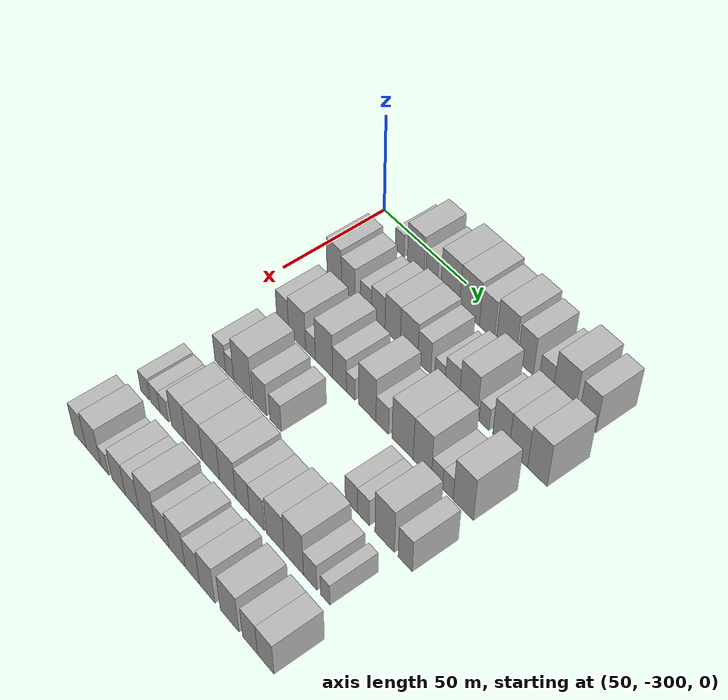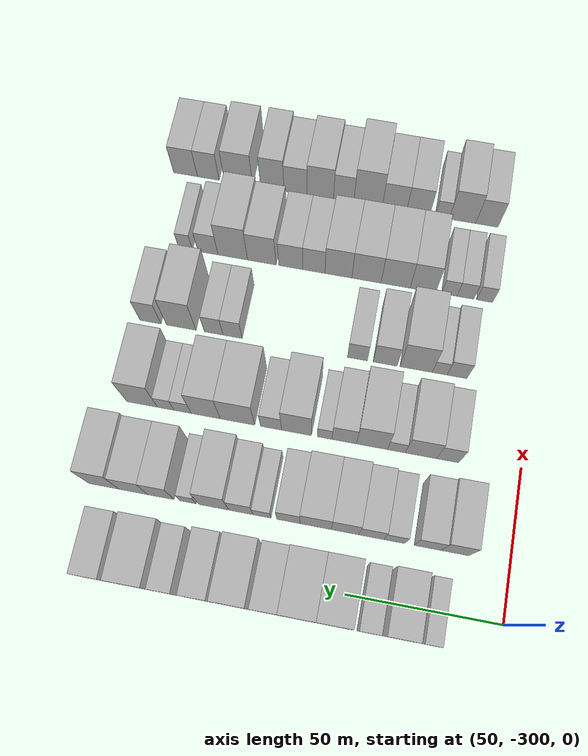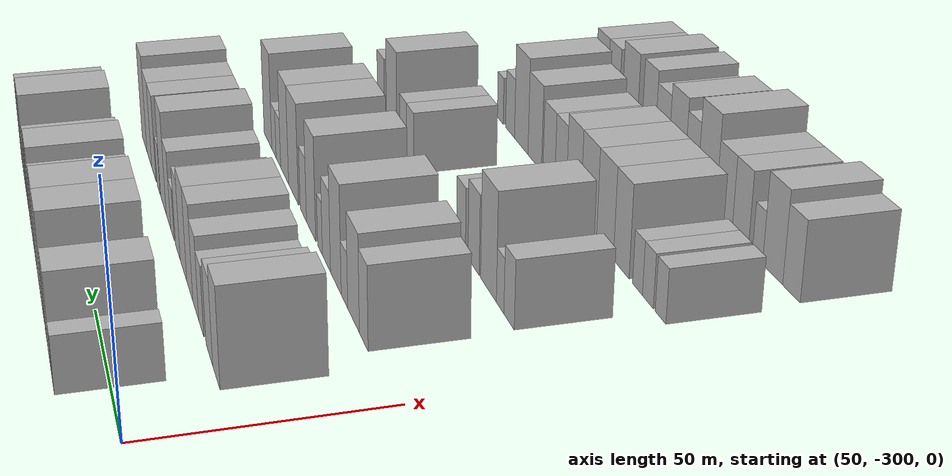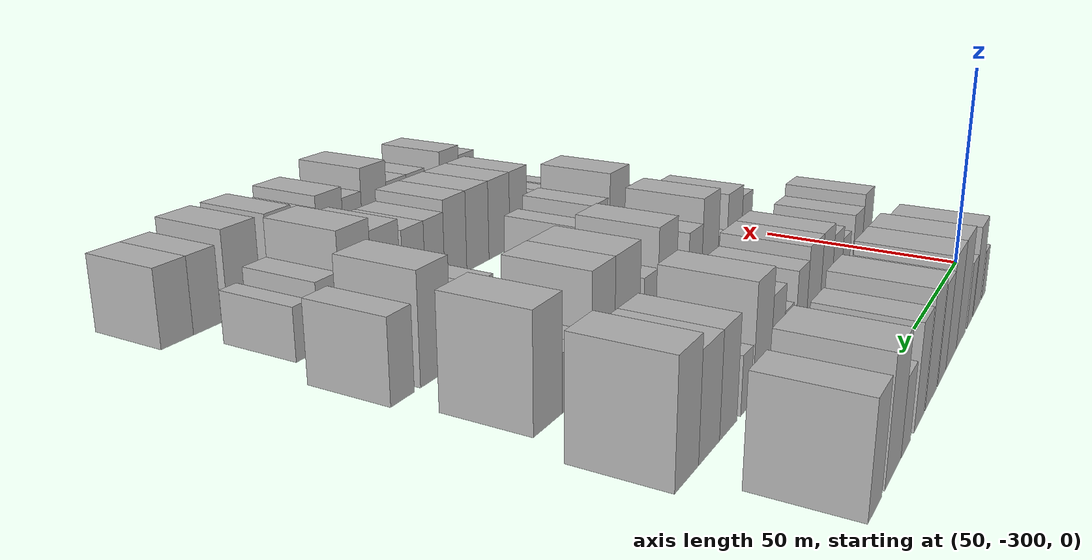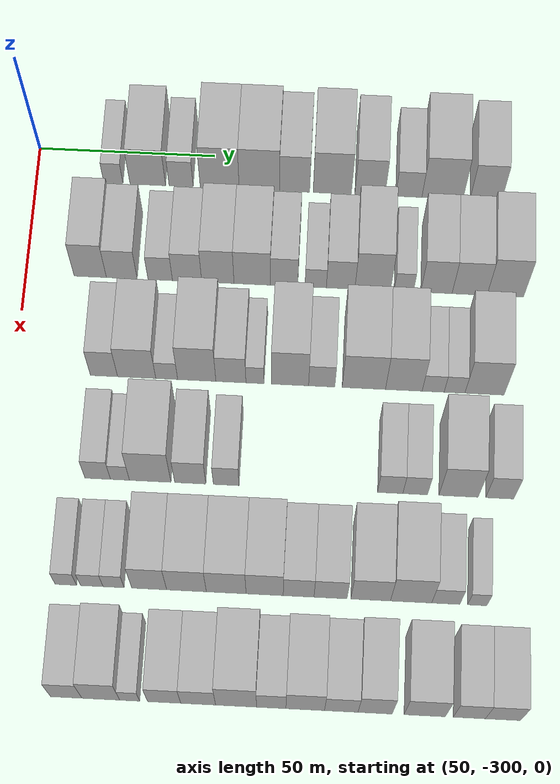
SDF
<sdf version="1.6">
 <world name="default">
  <model name="building_26">
   <static>1</static>
   <pose>50.0000 -278.1372 0 0.000000 0.000000 0.000000</pose>
   <link name="link">
    <pose>0 0 6.00 0 0 0</pose>
    <collision name="collision"><geometry><box><size>20.0000 5.4266 12.0000</size></box></geometry></collision>
    <visual name="visual">
     <cast_shadows>0</cast_shadows>
     <geometry><box><size>20.0000 5.4266 12.0000</size></box></geometry>
     <material>
      <script>
       <uri>model://HANNAS_wall/materials/scripts</uri>
       <uri>model://HANNAS_wall/materials/textures</uri>
       <name>vrc/HANNAS_wall</name>
      </script>
     </material>
    </visual>
   </link>
  </model>
  <model name="building_27">
   <static>1</static>
   <pose>50.0000 -268.3725 0 0.000000 0.000000 0.000000</pose>
   <link name="link">
    <pose>0 0 10.50 0 0 0</pose>
    <collision name="collision"><geometry><box><size>20.0000 10.1028 21.0000</size></box></geometry></collision>
    <visual name="visual">
     <cast_shadows>0</cast_shadows>
     <geometry><box><size>20.0000 10.1028 21.0000</size></box></geometry>
     <material>
      <script>
       <uri>model://HANNAS_wall/materials/scripts</uri>
       <uri>model://HANNAS_wall/materials/textures</uri>
       <name>vrc/HANNAS_wall</name>
      </script>
     </material>
    </visual>
   </link>
  </model>
  <model name="building_28">
   <static>1</static>
   <pose>50.0000 -258.9159 0 0.000000 0.000000 0.000000</pose>
   <link name="link">
    <pose>0 0 7.50 0 0 0</pose>
    <collision name="collision"><geometry><box><size>20.0000 6.8105 15.0000</size></box></geometry></collision>
    <visual name="visual">
     <cast_shadows>0</cast_shadows>
     <geometry><box><size>20.0000 6.8105 15.0000</size></box></geometry>
     <material>
      <script>
       <uri>model://HANNAS_wall/materials/scripts</uri>
       <uri>model://HANNAS_wall/materials/textures</uri>
       <name>vrc/HANNAS_wall</name>
      </script>
     </material>
    </visual>
   </link>
  </model>
  <model name="building_29">
   <static>1</static>
   <pose>50.0000 -248.0019 0 0.000000 0.000000 0.000000</pose>
   <link name="link">
    <pose>0 0 12.00 0 0 0</pose>
    <collision name="collision"><geometry><box><size>20.0000 11.0177 24.0000</size></box></geometry></collision>
    <visual name="visual">
     <cast_shadows>0</cast_shadows>
     <geometry><box><size>20.0000 11.0177 24.0000</size></box></geometry>
     <material>
      <script>
       <uri>model://HANNAS_wall/materials/scripts</uri>
       <uri>model://HANNAS_wall/materials/textures</uri>
       <name>vrc/HANNAS_wall</name>
      </script>
     </material>
    </visual>
   </link>
  </model>
  <model name="building_30">
   <static>1</static>
   <pose>50.0000 -236.7598 0 0.000000 0.000000 0.000000</pose>
   <link name="link">
    <pose>0 0 12.00 0 0 0</pose>
    <collision name="collision"><geometry><box><size>20.0000 11.4665 24.0000</size></box></geometry></collision>
    <visual name="visual">
     <cast_shadows>0</cast_shadows>
     <geometry><box><size>20.0000 11.4665 24.0000</size></box></geometry>
     <material>
      <script>
       <uri>model://HANNAS_wall/materials/scripts</uri>
       <uri>model://HANNAS_wall/materials/textures</uri>
       <name>vrc/HANNAS_wall</name>
      </script>
     </material>
    </visual>
   </link>
  </model>
  <model name="building_31">
   <static>1</static>
   <pose>50.0000 -226.7864 0 0.000000 0.000000 0.000000</pose>
   <link name="link">
    <pose>0 0 10.50 0 0 0</pose>
    <collision name="collision"><geometry><box><size>20.0000 8.4802 21.0000</size></box></geometry></collision>
    <visual name="visual">
     <cast_shadows>0</cast_shadows>
     <geometry><box><size>20.0000 8.4802 21.0000</size></box></geometry>
     <material>
      <script>
       <uri>model://HANNAS_wall/materials/scripts</uri>
       <uri>model://HANNAS_wall/materials/textures</uri>
       <name>vrc/HANNAS_wall</name>
      </script>
     </material>
    </visual>
   </link>
  </model>
  <model name="building_32">
   <static>1</static>
   <pose>50.0000 -216.1543 0 0.000000 0.000000 0.000000</pose>
   <link name="link">
    <pose>0 0 12.00 0 0 0</pose>
    <collision name="collision"><geometry><box><size>20.0000 10.7841 24.0000</size></box></geometry></collision>
    <visual name="visual">
     <cast_shadows>0</cast_shadows>
     <geometry><box><size>20.0000 10.7841 24.0000</size></box></geometry>
     <material>
      <script>
       <uri>model://HANNAS_wall/materials/scripts</uri>
       <uri>model://HANNAS_wall/materials/textures</uri>
       <name>vrc/HANNAS_wall</name>
      </script>
     </material>
    </visual>
   </link>
  </model>
  <model name="building_33">
   <static>1</static>
   <pose>50.0000 -205.5050 0 0.000000 0.000000 0.000000</pose>
   <link name="link">
    <pose>0 0 10.50 0 0 0</pose>
    <collision name="collision"><geometry><box><size>20.0000 8.5145 21.0000</size></box></geometry></collision>
    <visual name="visual">
     <cast_shadows>0</cast_shadows>
     <geometry><box><size>20.0000 8.5145 21.0000</size></box></geometry>
     <material>
      <script>
       <uri>model://HANNAS_wall/materials/scripts</uri>
       <uri>model://HANNAS_wall/materials/textures</uri>
       <name>vrc/HANNAS_wall</name>
      </script>
     </material>
    </visual>
   </link>
  </model>
  <model name="building_34">
   <static>1</static>
   <pose>50.0000 -194.5461 0 0.000000 0.000000 0.000000</pose>
   <link name="link">
    <pose>0 0 7.50 0 0 0</pose>
    <collision name="collision"><geometry><box><size>20.0000 7.4032 15.0000</size></box></geometry></collision>
    <visual name="visual">
     <cast_shadows>0</cast_shadows>
     <geometry><box><size>20.0000 7.4032 15.0000</size></box></geometry>
     <material>
      <script>
       <uri>model://HANNAS_wall/materials/scripts</uri>
       <uri>model://HANNAS_wall/materials/textures</uri>
       <name>vrc/HANNAS_wall</name>
      </script>
     </material>
    </visual>
   </link>
  </model>
  <model name="building_35">
   <static>1</static>
   <pose>50.0000 -185.0507 0 0.000000 0.000000 0.000000</pose>
   <link name="link">
    <pose>0 0 12.00 0 0 0</pose>
    <collision name="collision"><geometry><box><size>20.0000 11.5875 24.0000</size></box></geometry></collision>
    <visual name="visual">
     <cast_shadows>0</cast_shadows>
     <geometry><box><size>20.0000 11.5875 24.0000</size></box></geometry>
     <material>
      <script>
       <uri>model://HANNAS_wall/materials/scripts</uri>
       <uri>model://HANNAS_wall/materials/textures</uri>
       <name>vrc/HANNAS_wall</name>
      </script>
     </material>
    </visual>
   </link>
  </model>
  <model name="building_36">
   <static>1</static>
   <pose>50.0000 -172.8200 0 0.000000 0.000000 0.000000</pose>
   <link name="link">
    <pose>0 0 10.50 0 0 0</pose>
    <collision name="collision"><geometry><box><size>20.0000 8.8739 21.0000</size></box></geometry></collision>
    <visual name="visual">
     <cast_shadows>0</cast_shadows>
     <geometry><box><size>20.0000 8.8739 21.0000</size></box></geometry>
     <material>
      <script>
       <uri>model://HANNAS_wall/materials/scripts</uri>
       <uri>model://HANNAS_wall/materials/textures</uri>
       <name>vrc/HANNAS_wall</name>
      </script>
     </material>
    </visual>
   </link>
  </model>
  <model name="building_133">
   <static>1</static>
   <pose>79.0000 -282.1478 0 0.000000 0.000000 0.000000</pose>
   <link name="link">
    <pose>0 0 10.50 0 0 0</pose>
    <collision name="collision"><geometry><box><size>20.0000 8.9555 21.0000</size></box></geometry></collision>
    <visual name="visual">
     <cast_shadows>0</cast_shadows>
     <geometry><box><size>20.0000 8.9555 21.0000</size></box></geometry>
     <material>
      <script>
       <uri>model://HANNAS_wall/materials/scripts</uri>
       <uri>model://HANNAS_wall/materials/textures</uri>
       <name>vrc/HANNAS_wall</name>
      </script>
     </material>
    </visual>
   </link>
  </model>
  <model name="building_134">
   <static>1</static>
   <pose>79.0000 -273.3903 0 0.000000 0.000000 0.000000</pose>
   <link name="link">
    <pose>0 0 9.00 0 0 0</pose>
    <collision name="collision"><geometry><box><size>20.0000 8.5596 18.0000</size></box></geometry></collision>
    <visual name="visual">
     <cast_shadows>0</cast_shadows>
     <geometry><box><size>20.0000 8.5596 18.0000</size></box></geometry>
     <material>
      <script>
       <uri>model://HANNAS_wall/materials/scripts</uri>
       <uri>model://HANNAS_wall/materials/textures</uri>
       <name>vrc/HANNAS_wall</name>
      </script>
     </material>
    </visual>
   </link>
  </model>
  <model name="building_135">
   <static>1</static>
   <pose>79.0000 -262.7104 0 0.000000 0.000000 0.000000</pose>
   <link name="link">
    <pose>0 0 7.50 0 0 0</pose>
    <collision name="collision"><geometry><box><size>20.0000 6.8001 15.0000</size></box></geometry></collision>
    <visual name="visual">
     <cast_shadows>0</cast_shadows>
     <geometry><box><size>20.0000 6.8001 15.0000</size></box></geometry>
     <material>
      <script>
       <uri>model://HANNAS_wall/materials/scripts</uri>
       <uri>model://HANNAS_wall/materials/textures</uri>
       <name>vrc/HANNAS_wall</name>
      </script>
     </material>
    </visual>
   </link>
  </model>
  <model name="building_136">
   <static>1</static>
   <pose>79.0000 -255.2497 0 0.000000 0.000000 0.000000</pose>
   <link name="link">
    <pose>0 0 9.00 0 0 0</pose>
    <collision name="collision"><geometry><box><size>20.0000 8.1212 18.0000</size></box></geometry></collision>
    <visual name="visual">
     <cast_shadows>0</cast_shadows>
     <geometry><box><size>20.0000 8.1212 18.0000</size></box></geometry>
     <material>
      <script>
       <uri>model://HANNAS_wall/materials/scripts</uri>
       <uri>model://HANNAS_wall/materials/textures</uri>
       <name>vrc/HANNAS_wall</name>
      </script>
     </material>
    </visual>
   </link>
  </model>
  <model name="building_137">
   <static>1</static>
   <pose>79.0000 -246.7139 0 0.000000 0.000000 0.000000</pose>
   <link name="link">
    <pose>0 0 10.50 0 0 0</pose>
    <collision name="collision"><geometry><box><size>20.0000 8.9503 21.0000</size></box></geometry></collision>
    <visual name="visual">
     <cast_shadows>0</cast_shadows>
     <geometry><box><size>20.0000 8.9503 21.0000</size></box></geometry>
     <material>
      <script>
       <uri>model://HANNAS_wall/materials/scripts</uri>
       <uri>model://HANNAS_wall/materials/textures</uri>
       <name>vrc/HANNAS_wall</name>
      </script>
     </material>
    </visual>
   </link>
  </model>
  <model name="building_138">
   <static>1</static>
   <pose>79.0000 -237.1767 0 0.000000 0.000000 0.000000</pose>
   <link name="link">
    <pose>0 0 10.50 0 0 0</pose>
    <collision name="collision"><geometry><box><size>20.0000 10.1241 21.0000</size></box></geometry></collision>
    <visual name="visual">
     <cast_shadows>0</cast_shadows>
     <geometry><box><size>20.0000 10.1241 21.0000</size></box></geometry>
     <material>
      <script>
       <uri>model://HANNAS_wall/materials/scripts</uri>
       <uri>model://HANNAS_wall/materials/textures</uri>
       <name>vrc/HANNAS_wall</name>
      </script>
     </material>
    </visual>
   </link>
  </model>
  <model name="building_139">
   <static>1</static>
   <pose>79.0000 -228.3462 0 0.000000 0.000000 0.000000</pose>
   <link name="link">
    <pose>0 0 9.00 0 0 0</pose>
    <collision name="collision"><geometry><box><size>20.0000 7.5368 18.0000</size></box></geometry></collision>
    <visual name="visual">
     <cast_shadows>0</cast_shadows>
     <geometry><box><size>20.0000 7.5368 18.0000</size></box></geometry>
     <material>
      <script>
       <uri>model://HANNAS_wall/materials/scripts</uri>
       <uri>model://HANNAS_wall/materials/textures</uri>
       <name>vrc/HANNAS_wall</name>
      </script>
     </material>
    </visual>
   </link>
  </model>
  <model name="building_140">
   <static>1</static>
   <pose>79.0000 -219.6264 0 0.000000 0.000000 0.000000</pose>
   <link name="link">
    <pose>0 0 6.00 0 0 0</pose>
    <collision name="collision"><geometry><box><size>20.0000 5.9029 12.0000</size></box></geometry></collision>
    <visual name="visual">
     <cast_shadows>0</cast_shadows>
     <geometry><box><size>20.0000 5.9029 12.0000</size></box></geometry>
     <material>
      <script>
       <uri>model://HANNAS_wall/materials/scripts</uri>
       <uri>model://HANNAS_wall/materials/textures</uri>
       <name>vrc/HANNAS_wall</name>
      </script>
     </material>
    </visual>
   </link>
  </model>
  <model name="building_141">
   <static>1</static>
   <pose>79.0000 -212.7262 0 0.000000 0.000000 0.000000</pose>
   <link name="link">
    <pose>0 0 9.00 0 0 0</pose>
    <collision name="collision"><geometry><box><size>20.0000 7.8975 18.0000</size></box></geometry></collision>
    <visual name="visual">
     <cast_shadows>0</cast_shadows>
     <geometry><box><size>20.0000 7.8975 18.0000</size></box></geometry>
     <material>
      <script>
       <uri>model://HANNAS_wall/materials/scripts</uri>
       <uri>model://HANNAS_wall/materials/textures</uri>
       <name>vrc/HANNAS_wall</name>
      </script>
     </material>
    </visual>
   </link>
  </model>
  <model name="building_142">
   <static>1</static>
   <pose>79.0000 -203.8471 0 0.000000 0.000000 0.000000</pose>
   <link name="link">
    <pose>0 0 12.00 0 0 0</pose>
    <collision name="collision"><geometry><box><size>20.0000 9.8608 24.0000</size></box></geometry></collision>
    <visual name="visual">
     <cast_shadows>0</cast_shadows>
     <geometry><box><size>20.0000 9.8608 24.0000</size></box></geometry>
     <material>
      <script>
       <uri>model://HANNAS_wall/materials/scripts</uri>
       <uri>model://HANNAS_wall/materials/textures</uri>
       <name>vrc/HANNAS_wall</name>
      </script>
     </material>
    </visual>
   </link>
  </model>
  <model name="building_143">
   <static>1</static>
   <pose>79.0000 -195.2426 0 0.000000 0.000000 0.000000</pose>
   <link name="link">
    <pose>0 0 6.00 0 0 0</pose>
    <collision name="collision"><geometry><box><size>20.0000 5.3482 12.0000</size></box></geometry></collision>
    <visual name="visual">
     <cast_shadows>0</cast_shadows>
     <geometry><box><size>20.0000 5.3482 12.0000</size></box></geometry>
     <material>
      <script>
       <uri>model://HANNAS_wall/materials/scripts</uri>
       <uri>model://HANNAS_wall/materials/textures</uri>
       <name>vrc/HANNAS_wall</name>
      </script>
     </material>
    </visual>
   </link>
  </model>
  <model name="building_144">
   <static>1</static>
   <pose>79.0000 -186.2436 0 0.000000 0.000000 0.000000</pose>
   <link name="link">
    <pose>0 0 10.50 0 0 0</pose>
    <collision name="collision"><geometry><box><size>20.0000 8.6497 21.0000</size></box></geometry></collision>
    <visual name="visual">
     <cast_shadows>0</cast_shadows>
     <geometry><box><size>20.0000 8.6497 21.0000</size></box></geometry>
     <material>
      <script>
       <uri>model://HANNAS_wall/materials/scripts</uri>
       <uri>model://HANNAS_wall/materials/textures</uri>
       <name>vrc/HANNAS_wall</name>
      </script>
     </material>
    </visual>
   </link>
  </model>
  <model name="building_145">
   <static>1</static>
   <pose>79.0000 -177.0901 0 0.000000 0.000000 0.000000</pose>
   <link name="link">
    <pose>0 0 10.50 0 0 0</pose>
    <collision name="collision"><geometry><box><size>20.0000 9.6574 21.0000</size></box></geometry></collision>
    <visual name="visual">
     <cast_shadows>0</cast_shadows>
     <geometry><box><size>20.0000 9.6574 21.0000</size></box></geometry>
     <material>
      <script>
       <uri>model://HANNAS_wall/materials/scripts</uri>
       <uri>model://HANNAS_wall/materials/textures</uri>
       <name>vrc/HANNAS_wall</name>
      </script>
     </material>
    </visual>
   </link>
  </model>
  <model name="building_146">
   <static>1</static>
   <pose>79.0000 -167.2241 0 0.000000 0.000000 0.000000</pose>
   <link name="link">
    <pose>0 0 12.00 0 0 0</pose>
    <collision name="collision"><geometry><box><size>20.0000 10.0746 24.0000</size></box></geometry></collision>
    <visual name="visual">
     <cast_shadows>0</cast_shadows>
     <geometry><box><size>20.0000 10.0746 24.0000</size></box></geometry>
     <material>
      <script>
       <uri>model://HANNAS_wall/materials/scripts</uri>
       <uri>model://HANNAS_wall/materials/textures</uri>
       <name>vrc/HANNAS_wall</name>
      </script>
     </material>
    </visual>
   </link>
  </model>
  <model name="building_242">
   <static>1</static>
   <pose>108.0000 -275.8603 0 0.000000 0.000000 0.000000</pose>
   <link name="link">
    <pose>0 0 9.00 0 0 0</pose>
    <collision name="collision"><geometry><box><size>20.0000 7.3879 18.0000</size></box></geometry></collision>
    <visual name="visual">
     <cast_shadows>0</cast_shadows>
     <geometry><box><size>20.0000 7.3879 18.0000</size></box></geometry>
     <material>
      <script>
       <uri>model://HANNAS_wall/materials/scripts</uri>
       <uri>model://HANNAS_wall/materials/textures</uri>
       <name>vrc/HANNAS_wall</name>
      </script>
     </material>
    </visual>
   </link>
  </model>
  <model name="building_243">
   <static>1</static>
   <pose>108.0000 -266.9715 0 0.000000 0.000000 0.000000</pose>
   <link name="link">
    <pose>0 0 10.50 0 0 0</pose>
    <collision name="collision"><geometry><box><size>20.0000 10.3897 21.0000</size></box></geometry></collision>
    <visual name="visual">
     <cast_shadows>0</cast_shadows>
     <geometry><box><size>20.0000 10.3897 21.0000</size></box></geometry>
     <material>
      <script>
       <uri>model://HANNAS_wall/materials/scripts</uri>
       <uri>model://HANNAS_wall/materials/textures</uri>
       <name>vrc/HANNAS_wall</name>
      </script>
     </material>
    </visual>
   </link>
  </model>
  <model name="building_244">
   <static>1</static>
   <pose>108.0000 -258.8044 0 0.000000 0.000000 0.000000</pose>
   <link name="link">
    <pose>0 0 6.00 0 0 0</pose>
    <collision name="collision"><geometry><box><size>20.0000 5.9446 12.0000</size></box></geometry></collision>
    <visual name="visual">
     <cast_shadows>0</cast_shadows>
     <geometry><box><size>20.0000 5.9446 12.0000</size></box></geometry>
     <material>
      <script>
       <uri>model://HANNAS_wall/materials/scripts</uri>
       <uri>model://HANNAS_wall/materials/textures</uri>
       <name>vrc/HANNAS_wall</name>
      </script>
     </material>
    </visual>
   </link>
  </model>
  <model name="building_245">
   <static>1</static>
   <pose>108.0000 -250.6443 0 0.000000 0.000000 0.000000</pose>
   <link name="link">
    <pose>0 0 12.00 0 0 0</pose>
    <collision name="collision"><geometry><box><size>20.0000 10.3755 24.0000</size></box></geometry></collision>
    <visual name="visual">
     <cast_shadows>0</cast_shadows>
     <geometry><box><size>20.0000 10.3755 24.0000</size></box></geometry>
     <material>
      <script>
       <uri>model://HANNAS_wall/materials/scripts</uri>
       <uri>model://HANNAS_wall/materials/textures</uri>
       <name>vrc/HANNAS_wall</name>
      </script>
     </material>
    </visual>
   </link>
  </model>
  <model name="building_246">
   <static>1</static>
   <pose>108.0000 -241.3840 0 0.000000 0.000000 0.000000</pose>
   <link name="link">
    <pose>0 0 9.00 0 0 0</pose>
    <collision name="collision"><geometry><box><size>20.0000 8.1452 18.0000</size></box></geometry></collision>
    <visual name="visual">
     <cast_shadows>0</cast_shadows>
     <geometry><box><size>20.0000 8.1452 18.0000</size></box></geometry>
     <material>
      <script>
       <uri>model://HANNAS_wall/materials/scripts</uri>
       <uri>model://HANNAS_wall/materials/textures</uri>
       <name>vrc/HANNAS_wall</name>
      </script>
     </material>
    </visual>
   </link>
  </model>
  <model name="building_247">
   <static>1</static>
   <pose>108.0000 -234.8546 0 0.000000 0.000000 0.000000</pose>
   <link name="link">
    <pose>0 0 6.00 0 0 0</pose>
    <collision name="collision"><geometry><box><size>20.0000 4.9137 12.0000</size></box></geometry></collision>
    <visual name="visual">
     <cast_shadows>0</cast_shadows>
     <geometry><box><size>20.0000 4.9137 12.0000</size></box></geometry>
     <material>
      <script>
       <uri>model://HANNAS_wall/materials/scripts</uri>
       <uri>model://HANNAS_wall/materials/textures</uri>
       <name>vrc/HANNAS_wall</name>
      </script>
     </material>
    </visual>
   </link>
  </model>
  <model name="building_248">
   <static>1</static>
   <pose>108.0000 -225.3642 0 0.000000 0.000000 0.000000</pose>
   <link name="link">
    <pose>0 0 12.00 0 0 0</pose>
    <collision name="collision"><geometry><box><size>20.0000 10.0671 24.0000</size></box></geometry></collision>
    <visual name="visual">
     <cast_shadows>0</cast_shadows>
     <geometry><box><size>20.0000 10.0671 24.0000</size></box></geometry>
     <material>
      <script>
       <uri>model://HANNAS_wall/materials/scripts</uri>
       <uri>model://HANNAS_wall/materials/textures</uri>
       <name>vrc/HANNAS_wall</name>
      </script>
     </material>
    </visual>
   </link>
  </model>
  <model name="building_249">
   <static>1</static>
   <pose>108.0000 -216.7724 0 0.000000 0.000000 0.000000</pose>
   <link name="link">
    <pose>0 0 7.50 0 0 0</pose>
    <collision name="collision"><geometry><box><size>20.0000 7.1166 15.0000</size></box></geometry></collision>
    <visual name="visual">
     <cast_shadows>0</cast_shadows>
     <geometry><box><size>20.0000 7.1166 15.0000</size></box></geometry>
     <material>
      <script>
       <uri>model://HANNAS_wall/materials/scripts</uri>
       <uri>model://HANNAS_wall/materials/textures</uri>
       <name>vrc/HANNAS_wall</name>
      </script>
     </material>
    </visual>
   </link>
  </model>
  <model name="building_250">
   <static>1</static>
   <pose>108.0000 -205.3613 0 0.000000 0.000000 0.000000</pose>
   <link name="link">
    <pose>0 0 12.00 0 0 0</pose>
    <collision name="collision"><geometry><box><size>20.0000 11.7055 24.0000</size></box></geometry></collision>
    <visual name="visual">
     <cast_shadows>0</cast_shadows>
     <geometry><box><size>20.0000 11.7055 24.0000</size></box></geometry>
     <material>
      <script>
       <uri>model://HANNAS_wall/materials/scripts</uri>
       <uri>model://HANNAS_wall/materials/textures</uri>
       <name>vrc/HANNAS_wall</name>
      </script>
     </material>
    </visual>
   </link>
  </model>
  <model name="building_251">
   <static>1</static>
   <pose>108.0000 -194.5386 0 0.000000 0.000000 0.000000</pose>
   <link name="link">
    <pose>0 0 12.00 0 0 0</pose>
    <collision name="collision"><geometry><box><size>20.0000 9.9398 24.0000</size></box></geometry></collision>
    <visual name="visual">
     <cast_shadows>0</cast_shadows>
     <geometry><box><size>20.0000 9.9398 24.0000</size></box></geometry>
     <material>
      <script>
       <uri>model://HANNAS_wall/materials/scripts</uri>
       <uri>model://HANNAS_wall/materials/textures</uri>
       <name>vrc/HANNAS_wall</name>
      </script>
     </material>
    </visual>
   </link>
  </model>
  <model name="building_252">
   <static>1</static>
   <pose>108.0000 -186.5995 0 0.000000 0.000000 0.000000</pose>
   <link name="link">
    <pose>0 0 6.00 0 0 0</pose>
    <collision name="collision"><geometry><box><size>20.0000 5.9384 12.0000</size></box></geometry></collision>
    <visual name="visual">
     <cast_shadows>0</cast_shadows>
     <geometry><box><size>20.0000 5.9384 12.0000</size></box></geometry>
     <material>
      <script>
       <uri>model://HANNAS_wall/materials/scripts</uri>
       <uri>model://HANNAS_wall/materials/textures</uri>
       <name>vrc/HANNAS_wall</name>
      </script>
     </material>
    </visual>
   </link>
  </model>
  <model name="building_253">
   <static>1</static>
   <pose>108.0000 -180.8240 0 0.000000 0.000000 0.000000</pose>
   <link name="link">
    <pose>0 0 6.00 0 0 0</pose>
    <collision name="collision"><geometry><box><size>20.0000 5.6126 12.0000</size></box></geometry></collision>
    <visual name="visual">
     <cast_shadows>0</cast_shadows>
     <geometry><box><size>20.0000 5.6126 12.0000</size></box></geometry>
     <material>
      <script>
       <uri>model://HANNAS_wall/materials/scripts</uri>
       <uri>model://HANNAS_wall/materials/textures</uri>
       <name>vrc/HANNAS_wall</name>
      </script>
     </material>
    </visual>
   </link>
  </model>
  <model name="building_254">
   <static>1</static>
   <pose>108.0000 -172.7315 0 0.000000 0.000000 0.000000</pose>
   <link name="link">
    <pose>0 0 12.00 0 0 0</pose>
    <collision name="collision"><geometry><box><size>20.0000 10.5725 24.0000</size></box></geometry></collision>
    <visual name="visual">
     <cast_shadows>0</cast_shadows>
     <geometry><box><size>20.0000 10.5725 24.0000</size></box></geometry>
     <material>
      <script>
       <uri>model://HANNAS_wall/materials/scripts</uri>
       <uri>model://HANNAS_wall/materials/textures</uri>
       <name>vrc/HANNAS_wall</name>
      </script>
     </material>
    </visual>
   </link>
  </model>
  <model name="building_362">
   <static>1</static>
   <pose>137.0000 -275.0704 0 0.000000 0.000000 0.000000</pose>
   <link name="link">
    <pose>0 0 7.50 0 0 0</pose>
    <collision name="collision"><geometry><box><size>20.0000 6.7986 15.0000</size></box></geometry></collision>
    <visual name="visual">
     <cast_shadows>0</cast_shadows>
     <geometry><box><size>20.0000 6.7986 15.0000</size></box></geometry>
     <material>
      <script>
       <uri>model://HANNAS_wall/materials/scripts</uri>
       <uri>model://HANNAS_wall/materials/textures</uri>
       <name>vrc/HANNAS_wall</name>
      </script>
     </material>
    </visual>
   </link>
  </model>
  <model name="building_363">
   <static>1</static>
   <pose>137.0000 -269.1495 0 0.000000 0.000000 0.000000</pose>
   <link name="link">
    <pose>0 0 6.00 0 0 0</pose>
    <collision name="collision"><geometry><box><size>20.0000 5.0433 12.0000</size></box></geometry></collision>
    <visual name="visual">
     <cast_shadows>0</cast_shadows>
     <geometry><box><size>20.0000 5.0433 12.0000</size></box></geometry>
     <material>
      <script>
       <uri>model://HANNAS_wall/materials/scripts</uri>
       <uri>model://HANNAS_wall/materials/textures</uri>
       <name>vrc/HANNAS_wall</name>
      </script>
     </material>
    </visual>
   </link>
  </model>
  <model name="building_364">
   <static>1</static>
   <pose>137.0000 -261.1010 0 0.000000 0.000000 0.000000</pose>
   <link name="link">
    <pose>0 0 12.00 0 0 0</pose>
    <collision name="collision"><geometry><box><size>20.0000 11.0538 24.0000</size></box></geometry></collision>
    <visual name="visual">
     <cast_shadows>0</cast_shadows>
     <geometry><box><size>20.0000 11.0538 24.0000</size></box></geometry>
     <material>
      <script>
       <uri>model://HANNAS_wall/materials/scripts</uri>
       <uri>model://HANNAS_wall/materials/textures</uri>
       <name>vrc/HANNAS_wall</name>
      </script>
     </material>
    </visual>
   </link>
  </model>
  <model name="building_365">
   <static>1</static>
   <pose>137.0000 -250.4479 0 0.000000 0.000000 0.000000</pose>
   <link name="link">
    <pose>0 0 9.00 0 0 0</pose>
    <collision name="collision"><geometry><box><size>20.0000 8.2525 18.0000</size></box></geometry></collision>
    <visual name="visual">
     <cast_shadows>0</cast_shadows>
     <geometry><box><size>20.0000 8.2525 18.0000</size></box></geometry>
     <material>
      <script>
       <uri>model://HANNAS_wall/materials/scripts</uri>
       <uri>model://HANNAS_wall/materials/textures</uri>
       <name>vrc/HANNAS_wall</name>
      </script>
     </material>
    </visual>
   </link>
  </model>
  <model name="building_366">
   <static>1</static>
   <pose>137.0000 -240.9090 0 0.000000 0.000000 0.000000</pose>
   <link name="link">
    <pose>0 0 7.50 0 0 0</pose>
    <collision name="collision"><geometry><box><size>20.0000 6.8253 15.0000</size></box></geometry></collision>
    <visual name="visual">
     <cast_shadows>0</cast_shadows>
     <geometry><box><size>20.0000 6.8253 15.0000</size></box></geometry>
     <material>
      <script>
       <uri>model://HANNAS_wall/materials/scripts</uri>
       <uri>model://HANNAS_wall/materials/textures</uri>
       <name>vrc/HANNAS_wall</name>
      </script>
     </material>
    </visual>
   </link>
  </model>
  <model name="building_367">
   <static>1</static>
   <pose>137.0000 -197.4341 0 0.000000 0.000000 0.000000</pose>
   <link name="link">
    <pose>0 0 7.50 0 0 0</pose>
    <collision name="collision"><geometry><box><size>20.0000 6.7081 15.0000</size></box></geometry></collision>
    <visual name="visual">
     <cast_shadows>0</cast_shadows>
     <geometry><box><size>20.0000 6.7081 15.0000</size></box></geometry>
     <material>
      <script>
       <uri>model://HANNAS_wall/materials/scripts</uri>
       <uri>model://HANNAS_wall/materials/textures</uri>
       <name>vrc/HANNAS_wall</name>
      </script>
     </material>
    </visual>
   </link>
  </model>
  <model name="building_368">
   <static>1</static>
   <pose>137.0000 -190.8202 0 0.000000 0.000000 0.000000</pose>
   <link name="link">
    <pose>0 0 7.50 0 0 0</pose>
    <collision name="collision"><geometry><box><size>20.0000 6.5198 15.0000</size></box></geometry></collision>
    <visual name="visual">
     <cast_shadows>0</cast_shadows>
     <geometry><box><size>20.0000 6.5198 15.0000</size></box></geometry>
     <material>
      <script>
       <uri>model://HANNAS_wall/materials/scripts</uri>
       <uri>model://HANNAS_wall/materials/textures</uri>
       <name>vrc/HANNAS_wall</name>
      </script>
     </material>
    </visual>
   </link>
  </model>
  <model name="building_369">
   <static>1</static>
   <pose>137.0000 -179.3587 0 0.000000 0.000000 0.000000</pose>
   <link name="link">
    <pose>0 0 12.00 0 0 0</pose>
    <collision name="collision"><geometry><box><size>20.0000 10.4032 24.0000</size></box></geometry></collision>
    <visual name="visual">
     <cast_shadows>0</cast_shadows>
     <geometry><box><size>20.0000 10.4032 24.0000</size></box></geometry>
     <material>
      <script>
       <uri>model://HANNAS_wall/materials/scripts</uri>
       <uri>model://HANNAS_wall/materials/textures</uri>
       <name>vrc/HANNAS_wall</name>
      </script>
     </material>
    </visual>
   </link>
  </model>
  <model name="building_370">
   <static>1</static>
   <pose>137.0000 -168.4645 0 0.000000 0.000000 0.000000</pose>
   <link name="link">
    <pose>0 0 9.00 0 0 0</pose>
    <collision name="collision"><geometry><box><size>20.0000 7.3851 18.0000</size></box></geometry></collision>
    <visual name="visual">
     <cast_shadows>0</cast_shadows>
     <geometry><box><size>20.0000 7.3851 18.0000</size></box></geometry>
     <material>
      <script>
       <uri>model://HANNAS_wall/materials/scripts</uri>
       <uri>model://HANNAS_wall/materials/textures</uri>
       <name>vrc/HANNAS_wall</name>
      </script>
     </material>
    </visual>
   </link>
  </model>
  <model name="building_472">
   <static>1</static>
   <pose>166.0000 -280.8652 0 0.000000 0.000000 0.000000</pose>
   <link name="link">
    <pose>0 0 6.00 0 0 0</pose>
    <collision name="collision"><geometry><box><size>20.0000 5.5975 12.0000</size></box></geometry></collision>
    <visual name="visual">
     <cast_shadows>0</cast_shadows>
     <geometry><box><size>20.0000 5.5975 12.0000</size></box></geometry>
     <material>
      <script>
       <uri>model://HANNAS_wall/materials/scripts</uri>
       <uri>model://HANNAS_wall/materials/textures</uri>
       <name>vrc/HANNAS_wall</name>
      </script>
     </material>
    </visual>
   </link>
  </model>
  <model name="building_473">
   <static>1</static>
   <pose>166.0000 -274.1229 0 0.000000 0.000000 0.000000</pose>
   <link name="link">
    <pose>0 0 6.00 0 0 0</pose>
    <collision name="collision"><geometry><box><size>20.0000 5.8871 12.0000</size></box></geometry></collision>
    <visual name="visual">
     <cast_shadows>0</cast_shadows>
     <geometry><box><size>20.0000 5.8871 12.0000</size></box></geometry>
     <material>
      <script>
       <uri>model://HANNAS_wall/materials/scripts</uri>
       <uri>model://HANNAS_wall/materials/textures</uri>
       <name>vrc/HANNAS_wall</name>
      </script>
     </material>
    </visual>
   </link>
  </model>
  <model name="building_474">
   <static>1</static>
   <pose>166.0000 -268.4383 0 0.000000 0.000000 0.000000</pose>
   <link name="link">
    <pose>0 0 6.00 0 0 0</pose>
    <collision name="collision"><geometry><box><size>20.0000 5.4822 12.0000</size></box></geometry></collision>
    <visual name="visual">
     <cast_shadows>0</cast_shadows>
     <geometry><box><size>20.0000 5.4822 12.0000</size></box></geometry>
     <material>
      <script>
       <uri>model://HANNAS_wall/materials/scripts</uri>
       <uri>model://HANNAS_wall/materials/textures</uri>
       <name>vrc/HANNAS_wall</name>
      </script>
     </material>
    </visual>
   </link>
  </model>
  <model name="building_475">
   <static>1</static>
   <pose>166.0000 -259.1618 0 0.000000 0.000000 0.000000</pose>
   <link name="link">
    <pose>0 0 10.50 0 0 0</pose>
    <collision name="collision"><geometry><box><size>20.0000 9.0706 21.0000</size></box></geometry></collision>
    <visual name="visual">
     <cast_shadows>0</cast_shadows>
     <geometry><box><size>20.0000 9.0706 21.0000</size></box></geometry>
     <material>
      <script>
       <uri>model://HANNAS_wall/materials/scripts</uri>
       <uri>model://HANNAS_wall/materials/textures</uri>
       <name>vrc/HANNAS_wall</name>
      </script>
     </material>
    </visual>
   </link>
  </model>
  <model name="building_476">
   <static>1</static>
   <pose>166.0000 -249.4725 0 0.000000 0.000000 0.000000</pose>
   <link name="link">
    <pose>0 0 10.50 0 0 0</pose>
    <collision name="collision"><geometry><box><size>20.0000 10.3080 21.0000</size></box></geometry></collision>
    <visual name="visual">
     <cast_shadows>0</cast_shadows>
     <geometry><box><size>20.0000 10.3080 21.0000</size></box></geometry>
     <material>
      <script>
       <uri>model://HANNAS_wall/materials/scripts</uri>
       <uri>model://HANNAS_wall/materials/textures</uri>
       <name>vrc/HANNAS_wall</name>
      </script>
     </material>
    </visual>
   </link>
  </model>
  <model name="building_477">
   <static>1</static>
   <pose>166.0000 -239.1581 0 0.000000 0.000000 0.000000</pose>
   <link name="link">
    <pose>0 0 10.50 0 0 0</pose>
    <collision name="collision"><geometry><box><size>20.0000 10.3207 21.0000</size></box></geometry></collision>
    <visual name="visual">
     <cast_shadows>0</cast_shadows>
     <geometry><box><size>20.0000 10.3207 21.0000</size></box></geometry>
     <material>
      <script>
       <uri>model://HANNAS_wall/materials/scripts</uri>
       <uri>model://HANNAS_wall/materials/textures</uri>
       <name>vrc/HANNAS_wall</name>
      </script>
     </material>
    </visual>
   </link>
  </model>
  <model name="building_478">
   <static>1</static>
   <pose>166.0000 -229.1870 0 0.000000 0.000000 0.000000</pose>
   <link name="link">
    <pose>0 0 10.50 0 0 0</pose>
    <collision name="collision"><geometry><box><size>20.0000 9.6215 21.0000</size></box></geometry></collision>
    <visual name="visual">
     <cast_shadows>0</cast_shadows>
     <geometry><box><size>20.0000 9.6215 21.0000</size></box></geometry>
     <material>
      <script>
       <uri>model://HANNAS_wall/materials/scripts</uri>
       <uri>model://HANNAS_wall/materials/textures</uri>
       <name>vrc/HANNAS_wall</name>
      </script>
     </material>
    </visual>
   </link>
  </model>
  <model name="building_479">
   <static>1</static>
   <pose>166.0000 -220.3885 0 0.000000 0.000000 0.000000</pose>
   <link name="link">
    <pose>0 0 9.00 0 0 0</pose>
    <collision name="collision"><geometry><box><size>20.0000 7.9755 18.0000</size></box></geometry></collision>
    <visual name="visual">
     <cast_shadows>0</cast_shadows>
     <geometry><box><size>20.0000 7.9755 18.0000</size></box></geometry>
     <material>
      <script>
       <uri>model://HANNAS_wall/materials/scripts</uri>
       <uri>model://HANNAS_wall/materials/textures</uri>
       <name>vrc/HANNAS_wall</name>
      </script>
     </material>
    </visual>
   </link>
  </model>
  <model name="building_480">
   <static>1</static>
   <pose>166.0000 -212.1239 0 0.000000 0.000000 0.000000</pose>
   <link name="link">
    <pose>0 0 9.00 0 0 0</pose>
    <collision name="collision"><geometry><box><size>20.0000 8.5537 18.0000</size></box></geometry></collision>
    <visual name="visual">
     <cast_shadows>0</cast_shadows>
     <geometry><box><size>20.0000 8.5537 18.0000</size></box></geometry>
     <material>
      <script>
       <uri>model://HANNAS_wall/materials/scripts</uri>
       <uri>model://HANNAS_wall/materials/textures</uri>
       <name>vrc/HANNAS_wall</name>
      </script>
     </material>
    </visual>
   </link>
  </model>
  <model name="building_481">
   <static>1</static>
   <pose>166.0000 -201.7252 0 0.000000 0.000000 0.000000</pose>
   <link name="link">
    <pose>0 0 10.50 0 0 0</pose>
    <collision name="collision"><geometry><box><size>20.0000 10.2436 21.0000</size></box></geometry></collision>
    <visual name="visual">
     <cast_shadows>0</cast_shadows>
     <geometry><box><size>20.0000 10.2436 21.0000</size></box></geometry>
     <material>
      <script>
       <uri>model://HANNAS_wall/materials/scripts</uri>
       <uri>model://HANNAS_wall/materials/textures</uri>
       <name>vrc/HANNAS_wall</name>
      </script>
     </material>
    </visual>
   </link>
  </model>
  <model name="building_482">
   <static>1</static>
   <pose>166.0000 -191.2661 0 0.000000 0.000000 0.000000</pose>
   <link name="link">
    <pose>0 0 12.00 0 0 0</pose>
    <collision name="collision"><geometry><box><size>20.0000 10.6747 24.0000</size></box></geometry></collision>
    <visual name="visual">
     <cast_shadows>0</cast_shadows>
     <geometry><box><size>20.0000 10.6747 24.0000</size></box></geometry>
     <material>
      <script>
       <uri>model://HANNAS_wall/materials/scripts</uri>
       <uri>model://HANNAS_wall/materials/textures</uri>
       <name>vrc/HANNAS_wall</name>
      </script>
     </material>
    </visual>
   </link>
  </model>
  <model name="building_483">
   <static>1</static>
   <pose>166.0000 -182.2848 0 0.000000 0.000000 0.000000</pose>
   <link name="link">
    <pose>0 0 7.50 0 0 0</pose>
    <collision name="collision"><geometry><box><size>20.0000 7.2879 15.0000</size></box></geometry></collision>
    <visual name="visual">
     <cast_shadows>0</cast_shadows>
     <geometry><box><size>20.0000 7.2879 15.0000</size></box></geometry>
     <material>
      <script>
       <uri>model://HANNAS_wall/materials/scripts</uri>
       <uri>model://HANNAS_wall/materials/textures</uri>
       <name>vrc/HANNAS_wall</name>
      </script>
     </material>
    </visual>
   </link>
  </model>
  <model name="building_484">
   <static>1</static>
   <pose>166.0000 -174.1417 0 0.000000 0.000000 0.000000</pose>
   <link name="link">
    <pose>0 0 6.00 0 0 0</pose>
    <collision name="collision"><geometry><box><size>20.0000 4.9983 12.0000</size></box></geometry></collision>
    <visual name="visual">
     <cast_shadows>0</cast_shadows>
     <geometry><box><size>20.0000 4.9983 12.0000</size></box></geometry>
     <material>
      <script>
       <uri>model://HANNAS_wall/materials/scripts</uri>
       <uri>model://HANNAS_wall/materials/textures</uri>
       <name>vrc/HANNAS_wall</name>
      </script>
     </material>
    </visual>
   </link>
  </model>
  <model name="building_582">
   <static>1</static>
   <pose>195.0000 -278.0527 0 0.000000 0.000000 0.000000</pose>
   <link name="link">
    <pose>0 0 9.00 0 0 0</pose>
    <collision name="collision"><geometry><box><size>20.0000 8.0110 18.0000</size></box></geometry></collision>
    <visual name="visual">
     <cast_shadows>0</cast_shadows>
     <geometry><box><size>20.0000 8.0110 18.0000</size></box></geometry>
     <material>
      <script>
       <uri>model://HANNAS_wall/materials/scripts</uri>
       <uri>model://HANNAS_wall/materials/textures</uri>
       <name>vrc/HANNAS_wall</name>
      </script>
     </material>
    </visual>
   </link>
  </model>
  <model name="building_583">
   <static>1</static>
   <pose>195.0000 -269.2465 0 0.000000 0.000000 0.000000</pose>
   <link name="link">
    <pose>0 0 10.50 0 0 0</pose>
    <collision name="collision"><geometry><box><size>20.0000 9.6015 21.0000</size></box></geometry></collision>
    <visual name="visual">
     <cast_shadows>0</cast_shadows>
     <geometry><box><size>20.0000 9.6015 21.0000</size></box></geometry>
     <material>
      <script>
       <uri>model://HANNAS_wall/materials/scripts</uri>
       <uri>model://HANNAS_wall/materials/textures</uri>
       <name>vrc/HANNAS_wall</name>
      </script>
     </material>
    </visual>
   </link>
  </model>
  <model name="building_584">
   <static>1</static>
   <pose>195.0000 -261.9111 0 0.000000 0.000000 0.000000</pose>
   <link name="link">
    <pose>0 0 6.00 0 0 0</pose>
    <collision name="collision"><geometry><box><size>20.0000 5.0693 12.0000</size></box></geometry></collision>
    <visual name="visual">
     <cast_shadows>0</cast_shadows>
     <geometry><box><size>20.0000 5.0693 12.0000</size></box></geometry>
     <material>
      <script>
       <uri>model://HANNAS_wall/materials/scripts</uri>
       <uri>model://HANNAS_wall/materials/textures</uri>
       <name>vrc/HANNAS_wall</name>
      </script>
     </material>
    </visual>
   </link>
  </model>
  <model name="building_585">
   <static>1</static>
   <pose>195.0000 -253.1634 0 0.000000 0.000000 0.000000</pose>
   <link name="link">
    <pose>0 0 9.00 0 0 0</pose>
    <collision name="collision"><geometry><box><size>20.0000 8.4263 18.0000</size></box></geometry></collision>
    <visual name="visual">
     <cast_shadows>0</cast_shadows>
     <geometry><box><size>20.0000 8.4263 18.0000</size></box></geometry>
     <material>
      <script>
       <uri>model://HANNAS_wall/materials/scripts</uri>
       <uri>model://HANNAS_wall/materials/textures</uri>
       <name>vrc/HANNAS_wall</name>
      </script>
     </material>
    </visual>
   </link>
  </model>
  <model name="building_586">
   <static>1</static>
   <pose>195.0000 -244.5220 0 0.000000 0.000000 0.000000</pose>
   <link name="link">
    <pose>0 0 9.00 0 0 0</pose>
    <collision name="collision"><geometry><box><size>20.0000 8.8564 18.0000</size></box></geometry></collision>
    <visual name="visual">
     <cast_shadows>0</cast_shadows>
     <geometry><box><size>20.0000 8.8564 18.0000</size></box></geometry>
     <material>
      <script>
       <uri>model://HANNAS_wall/materials/scripts</uri>
       <uri>model://HANNAS_wall/materials/textures</uri>
       <name>vrc/HANNAS_wall</name>
      </script>
     </material>
    </visual>
   </link>
  </model>
  <model name="building_587">
   <static>1</static>
   <pose>195.0000 -234.8960 0 0.000000 0.000000 0.000000</pose>
   <link name="link">
    <pose>0 0 12.00 0 0 0</pose>
    <collision name="collision"><geometry><box><size>20.0000 10.3957 24.0000</size></box></geometry></collision>
    <visual name="visual">
     <cast_shadows>0</cast_shadows>
     <geometry><box><size>20.0000 10.3957 24.0000</size></box></geometry>
     <material>
      <script>
       <uri>model://HANNAS_wall/materials/scripts</uri>
       <uri>model://HANNAS_wall/materials/textures</uri>
       <name>vrc/HANNAS_wall</name>
      </script>
     </material>
    </visual>
   </link>
  </model>
  <model name="building_588">
   <static>1</static>
   <pose>195.0000 -225.9871 0 0.000000 0.000000 0.000000</pose>
   <link name="link">
    <pose>0 0 9.00 0 0 0</pose>
    <collision name="collision"><geometry><box><size>20.0000 7.4221 18.0000</size></box></geometry></collision>
    <visual name="visual">
     <cast_shadows>0</cast_shadows>
     <geometry><box><size>20.0000 7.4221 18.0000</size></box></geometry>
     <material>
      <script>
       <uri>model://HANNAS_wall/materials/scripts</uri>
       <uri>model://HANNAS_wall/materials/textures</uri>
       <name>vrc/HANNAS_wall</name>
      </script>
     </material>
    </visual>
   </link>
  </model>
  <model name="building_589">
   <static>1</static>
   <pose>195.0000 -217.3945 0 0.000000 0.000000 0.000000</pose>
   <link name="link">
    <pose>0 0 10.50 0 0 0</pose>
    <collision name="collision"><geometry><box><size>20.0000 9.7632 21.0000</size></box></geometry></collision>
    <visual name="visual">
     <cast_shadows>0</cast_shadows>
     <geometry><box><size>20.0000 9.7632 21.0000</size></box></geometry>
     <material>
      <script>
       <uri>model://HANNAS_wall/materials/scripts</uri>
       <uri>model://HANNAS_wall/materials/textures</uri>
       <name>vrc/HANNAS_wall</name>
      </script>
     </material>
    </visual>
   </link>
  </model>
  <model name="building_590">
   <static>1</static>
   <pose>195.0000 -208.2725 0 0.000000 0.000000 0.000000</pose>
   <link name="link">
    <pose>0 0 9.00 0 0 0</pose>
    <collision name="collision"><geometry><box><size>20.0000 8.4808 18.0000</size></box></geometry></collision>
    <visual name="visual">
     <cast_shadows>0</cast_shadows>
     <geometry><box><size>20.0000 8.4808 18.0000</size></box></geometry>
     <material>
      <script>
       <uri>model://HANNAS_wall/materials/scripts</uri>
       <uri>model://HANNAS_wall/materials/textures</uri>
       <name>vrc/HANNAS_wall</name>
      </script>
     </material>
    </visual>
   </link>
  </model>
  <model name="building_591">
   <static>1</static>
   <pose>195.0000 -199.6986 0 0.000000 0.000000 0.000000</pose>
   <link name="link">
    <pose>0 0 10.50 0 0 0</pose>
    <collision name="collision"><geometry><box><size>20.0000 8.6670 21.0000</size></box></geometry></collision>
    <visual name="visual">
     <cast_shadows>0</cast_shadows>
     <geometry><box><size>20.0000 8.6670 21.0000</size></box></geometry>
     <material>
      <script>
       <uri>model://HANNAS_wall/materials/scripts</uri>
       <uri>model://HANNAS_wall/materials/textures</uri>
       <name>vrc/HANNAS_wall</name>
      </script>
     </material>
    </visual>
   </link>
  </model>
  <model name="building_592">
   <static>1</static>
   <pose>195.0000 -187.1424 0 0.000000 0.000000 0.000000</pose>
   <link name="link">
    <pose>0 0 10.50 0 0 0</pose>
    <collision name="collision"><geometry><box><size>20.0000 10.4455 21.0000</size></box></geometry></collision>
    <visual name="visual">
     <cast_shadows>0</cast_shadows>
     <geometry><box><size>20.0000 10.4455 21.0000</size></box></geometry>
     <material>
      <script>
       <uri>model://HANNAS_wall/materials/scripts</uri>
       <uri>model://HANNAS_wall/materials/textures</uri>
       <name>vrc/HANNAS_wall</name>
      </script>
     </material>
    </visual>
   </link>
  </model>
  <model name="building_593">
   <static>1</static>
   <pose>195.0000 -175.8590 0 0.000000 0.000000 0.000000</pose>
   <link name="link">
    <pose>0 0 9.00 0 0 0</pose>
    <collision name="collision"><geometry><box><size>20.0000 8.1214 18.0000</size></box></geometry></collision>
    <visual name="visual">
     <cast_shadows>0</cast_shadows>
     <geometry><box><size>20.0000 8.1214 18.0000</size></box></geometry>
     <material>
      <script>
       <uri>model://HANNAS_wall/materials/scripts</uri>
       <uri>model://HANNAS_wall/materials/textures</uri>
       <name>vrc/HANNAS_wall</name>
      </script>
     </material>
    </visual>
   </link>
  </model>
  <model name="building_594">
   <static>1</static>
   <pose>195.0000 -167.3606 0 0.000000 0.000000 0.000000</pose>
   <link name="link">
    <pose>0 0 9.00 0 0 0</pose>
    <collision name="collision"><geometry><box><size>20.0000 8.8755 18.0000</size></box></geometry></collision>
    <visual name="visual">
     <cast_shadows>0</cast_shadows>
     <geometry><box><size>20.0000 8.8755 18.0000</size></box></geometry>
     <material>
      <script>
       <uri>model://HANNAS_wall/materials/scripts</uri>
       <uri>model://HANNAS_wall/materials/textures</uri>
       <name>vrc/HANNAS_wall</name>
      </script>
     </material>
    </visual>
   </link>
  </model>
 </world>
</sdf>
